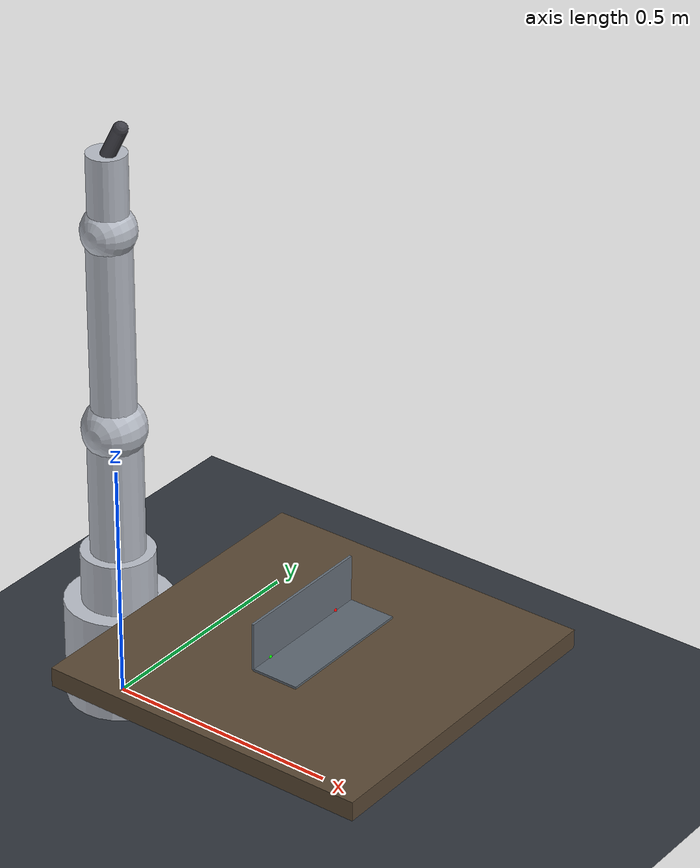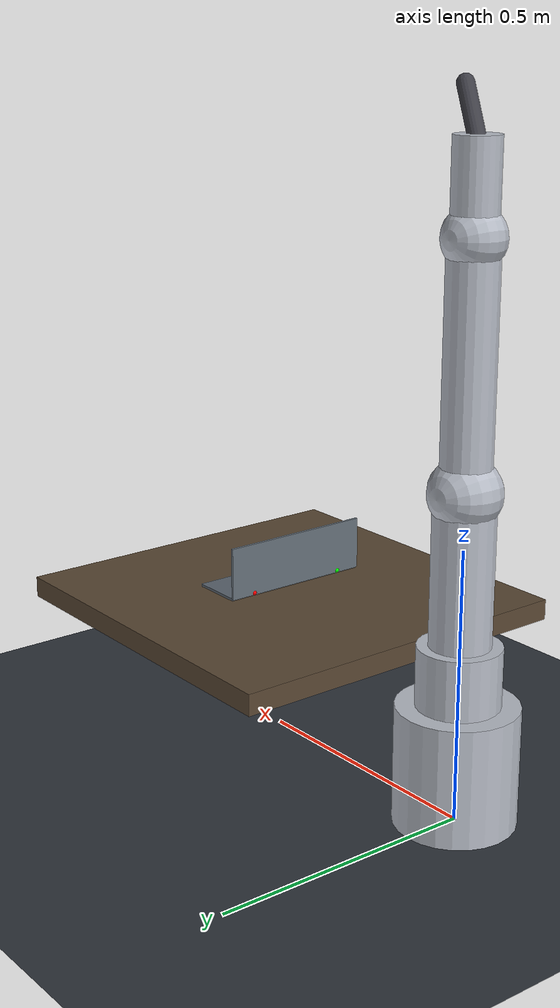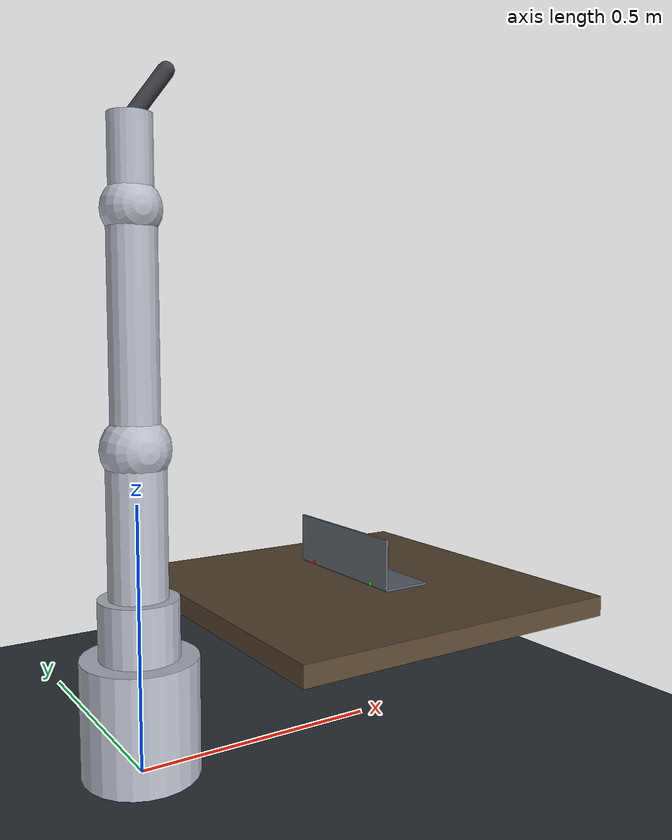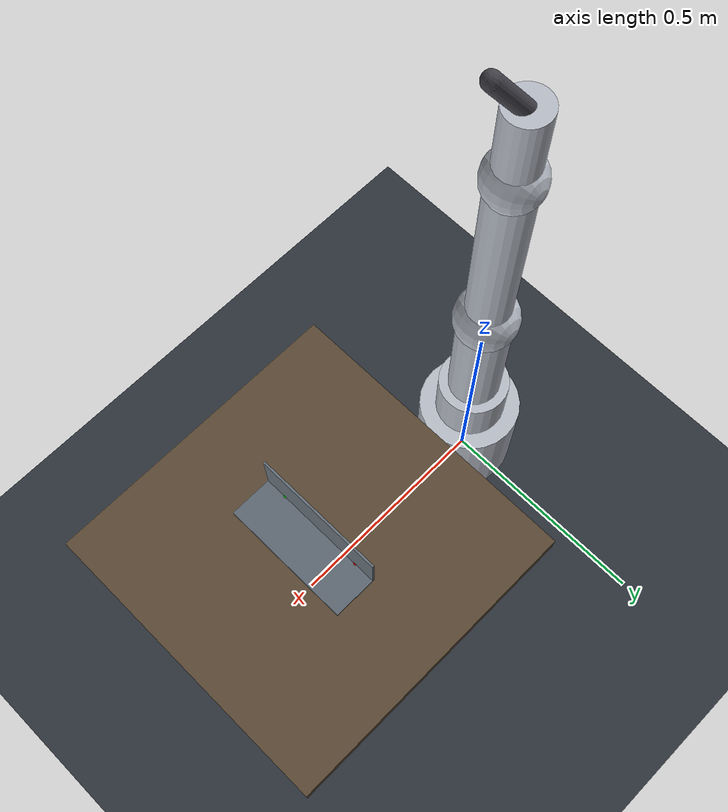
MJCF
<mujoco model="elfin5_welding">
  <compiler angle="radian" inertiafromgeom="true"/>
  <option timestep="0.002" gravity="0 0 -9.81" integrator="implicitfast"/>
  <visual><global offwidth="640" offheight="480"/></visual>
  <default>
    <joint damping="5" frictionloss="0.5" armature="0.15"/>
    <geom contype="1" conaffinity="2" rgba="0.72 0.74 0.78 1"/>
    <position kv="60"/>
  </default>
  <worldbody>
    <light pos="0.5 -0.4 1.8" dir="0.1 0.1 -1" diffuse="0.8 0.8 0.8"/>
    <geom name="floor" type="plane" size="2 2 0.1" rgba="0.18 0.2 0.23 1" contype="2" conaffinity="1"/>
    <geom name="table" type="box" pos="0.48 0 0.27" size="0.35 0.35 0.02" rgba="0.35 0.28 0.2 1" contype="2" conaffinity="1"/>
    <camera name="global" mode="targetbody" target="workpiece" pos="0.95 -0.75 1.05" fovy="52"/>

    <geom name="base" type="cylinder" pos="0 0 0.11" size="0.11 0.11" contype="0" conaffinity="0"/>
    <body name="link1" pos="0 0 0.22" gravcomp="1">
      <joint name="joint1" axis="0 0 1" range="-3.14 3.14"/>
      <geom type="cylinder" size="0.075 0.11"/>
      <body name="link2" quat="0.707105 0.707108 0 0" gravcomp="1">
        <joint name="joint2" axis="0 0 1" range="-2.35 2.35"/>
        <geom type="capsule" fromto="0 0 0 0 0.38 0" size="0.055"/>
        <body name="link3" pos="0 0.38 0" quat="-0.0000026 0.707105 0.707108 -0.0000026" gravcomp="1">
          <joint name="joint3" axis="0 0 1" range="-2.61 2.61"/>
          <geom type="sphere" size="0.065"/>
          <body name="link4" quat="0.499998 0.5 0.500002 0.5" gravcomp="1">
            <joint name="joint4" axis="0 0 1" range="-3.14 3.14"/>
            <geom type="capsule" fromto="0 0 0 0 0 0.42" size="0.045"/>
            <body name="link5" pos="0 0 0.42" quat="0.707105 -0.707108 0 0" gravcomp="1">
              <joint name="joint5" axis="0 0 1" range="-2.56 2.56"/>
              <geom type="sphere" size="0.055"/>
              <body name="link6" quat="0.707105 0.707108 0 0" gravcomp="1">
                <joint name="joint6" axis="0 0 1" range="-3.14 3.14"/>
                <geom type="cylinder" pos="0 0 0.08" size="0.04 0.08" contype="0" conaffinity="0"/>
                <geom name="torch" type="capsule" fromto="0 0 0.15 0.057557 -0.025778 0.233020" size="0.015" rgba="0.25 0.25 0.28 1" contype="0" conaffinity="0"/>
                <site name="tcp" pos="0.057557 -0.025778 0.233020" quat="-0.387292070 0.078064102 0.914695023 0.085110886" size="0.008" rgba="1 0.2 0.1 1"/>
                <camera name="wrist" pos="0.02 0.08 0.14" euler="3.14159 0 0" fovy="70"/>
                <body name="tool_payload" pos="0.086831 -0.072975 0.285956" gravcomp="1">
                  <inertial pos="0 0 0" mass="0.216" diaginertia="0.0001 0.0001 0.0001"/>
                </body>
              </body>
            </body>
          </body>
        </body>
      </body>
    </body>

    <body name="workpiece" pos="0.45 0 0.31">
      <geom name="plate_horizontal" type="box" pos="0.05 0 0" size="0.05 0.15 0.0025" rgba="0.36 0.4 0.44 1" contype="2" conaffinity="1"/>
      <geom name="plate_vertical" type="box" pos="0 0 0.05" size="0.0025 0.15 0.05" rgba="0.4 0.44 0.48 1" contype="2" conaffinity="1"/>
      <site name="seam_start" pos="0 -0.1 0.003" size="0.005" rgba="0 1 0 1"/>
      <site name="seam_end" pos="0 0.1 0.003" size="0.005" rgba="1 0 0 1"/>
    </body>
  </worldbody>
  <actuator>
    <position name="motor1" joint="joint1" kp="3000" ctrlrange="-3.14 3.14"/>
    <position name="motor2" joint="joint2" kp="3000" ctrlrange="-2.35 2.35"/>
    <position name="motor3" joint="joint3" kp="2000" ctrlrange="-2.61 2.61"/>
    <position name="motor4" joint="joint4" kp="2000" ctrlrange="-3.14 3.14"/>
    <position name="motor5" joint="joint5" kp="800" ctrlrange="-2.56 2.56"/>
    <position name="motor6" joint="joint6" kp="800" ctrlrange="-3.14 3.14"/>
  </actuator>
</mujoco>
